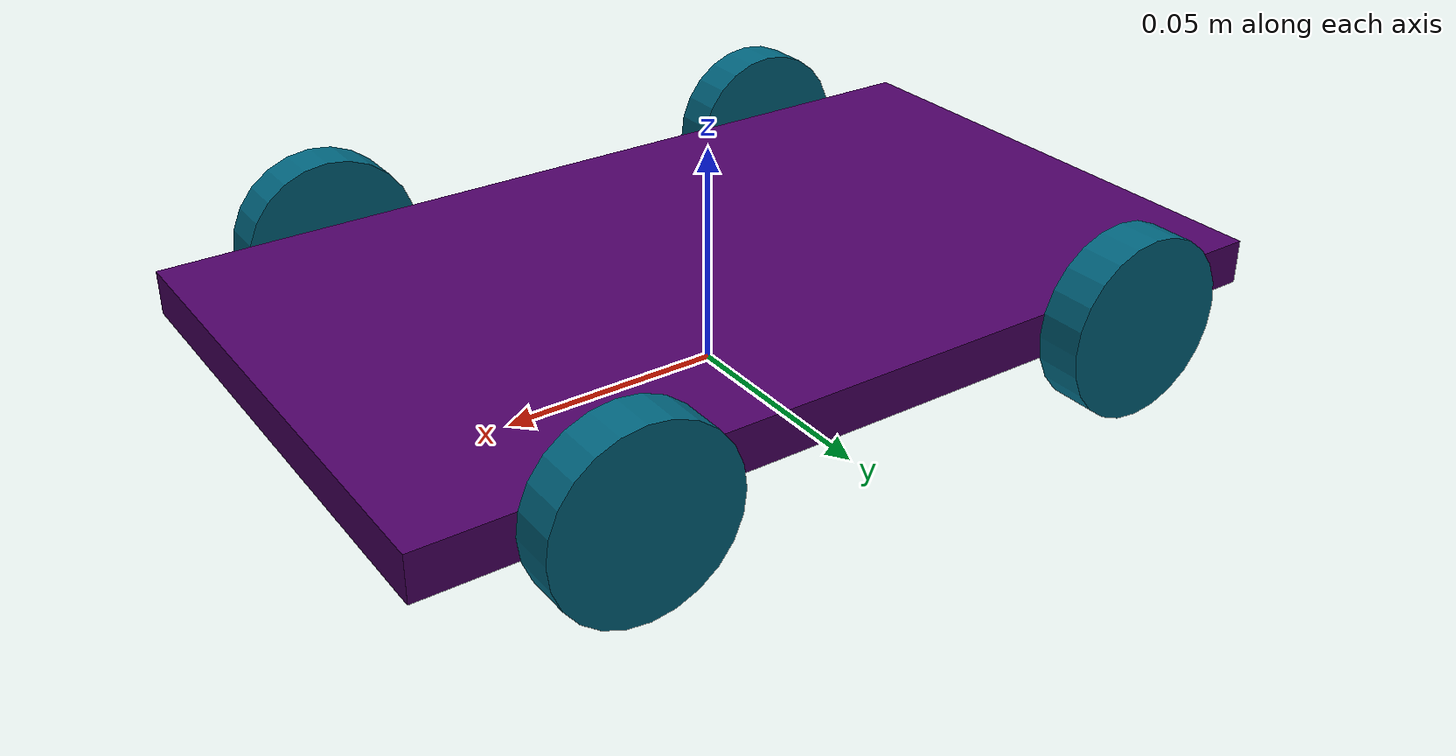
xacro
<?xml version='1.0'?>
<robot xmlns:xacro ="http://www.ros.org/wiki/xacro" name="car-robot" >
	<xacro:include filename="$(find car_robot)/urdf/car-robot-params.xacro" />
	<xacro:include filename="$(find car_robot)/urdf/car-robot-inertia.xacro" />
	<xacro:include filename="$(find car_robot)/urdf/car-robot-chassis.xacro" />
	<xacro:include filename="$(find car_robot)/urdf/car-robot-wheel.xacro" />
	<xacro:include filename="$(find car_robot)/urdf/car-robot-gazebo.xacro" />

</robot>

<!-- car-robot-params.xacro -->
<robot xmlns:xacro ="http://www.ros.org/wiki/xacro" >
	<xacro:property name="chassis_length" value="0.2" />
	<xacro:property name="chassis_width" value="0.12" />
	<xacro:property name="chassis_height" value="0.01" />
	<xacro:property name="chassis_mass" value="0.4" />
	<xacro:property name="wheel_radius" value="0.02" />
	<xacro:property name="wheel_height" value="0.01" />
	<xacro:property name="wheel_mass" value="0.2" />
</robot>

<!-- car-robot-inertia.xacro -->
<robot xmlns:xacro ="http://www.ros.org/wiki/xacro" name="car_robot_inertia">

	<xacro:macro name="box_inertia" params="mass L W H">
		<inertia ixx="${1/12 * mass * (L**2 + W**2 )}" iyy="${1/12 * mass * (H**2 + W**2 )}" izz="${1/12 * mass * (L**2 + H**2 )}"
		ixy="0" ixz="0" iyz="0"/>
	</xacro:macro>

	<xacro:macro name="cylinder_inertia" params="mass R H">
		<inertia ixx="${1/12 * mass * (3 * R**2 + H**2 )}" iyy="${1/12 * mass * (3 * R**2 + H**2 )}" izz="${0.5 * (mass * R**2 )}"
		ixy="0" ixz="0" iyz="0"/>
	</xacro:macro>

</robot>

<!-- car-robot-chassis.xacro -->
<robot xmlns:xacro ="http://www.ros.org/wiki/xacro" name="car_robot_chassis">

	<!--dummy link-->
	<link name="base_link"/>

	<!--chassis link-->
	<link name="chassis-link">
		<visual>
			<origin xyz="0 0 0" rpy="0 0 0" />
			<geometry>
				<box size="${chassis_length} ${chassis_width} ${chassis_height}" />
			</geometry>
			<material name="brown">
				<color rgba="0.3 0 0.4 1"/>
			</material>
		</visual>
		<collision>
			<origin xyz="0 0 0" rpy="0 0 0" />
			<geometry>
				<box size="${chassis_length} ${chassis_width} ${chassis_height}" />
			</geometry>
		</collision>
		<inertial>
			<mass value="0.4" />
			<inertia ixx="0.00048333" iyy="0.0013367" izz="0.0018133"
			ixy="0" ixz="0" iyz="0"/>
		</inertial>
	</link>

	<joint name="joint-base-chassis" type="fixed">
		<parent link="base_link"/>
		<child link="chassis-link"/>
		<origin xyz="0 0 ${wheel_radius}" rpy="0 0 0" />
	</joint>
</robot>

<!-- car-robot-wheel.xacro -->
<robot xmlns:xacro ="http://www.ros.org/wiki/xacro" name="car_robot_wheel">

	<material name="blue">
		<color rgba="0 0.4 0.5 1"/>
	</material>

	<xacro:macro name="wheel" params="x_position y_position x_reflect y_reflect">
	<!-- ${x_position}-${y_position}-wheel-link -->
		<link name="${x_position}-${y_position}-wheel-link">
			<visual>
				<origin xyz="0 0 0" rpy="${pi * 0.5} 0 0" />
				<geometry>
					<cylinder radius ="${wheel_radius}"  length="${wheel_height}" />
				</geometry>
				<material name="blue" />
			</visual>
			<collision>
				<origin xyz="0 0 0" rpy="${pi * 0.5} 0 0" />
				<geometry>
					<cylinder radius ="${wheel_radius}"  length="${wheel_height}" />
				</geometry>
			</collision>
			<inertial>
				<origin xyz="0 0 0" rpy="${pi * 0.5} 0 0" />
				<mass value="${wheel_mass}" />
				<xacro:cylinder_inertia  mass="${wheel_mass}" R="${wheel_radius}" H="${wheel_height}" />
			</inertial>
		</link>
		<joint name="joint-chassis-${x_position}-${y_position}-wheel" type="continuous">
			<parent link="chassis-link"/>
			<child link="${x_position}-${y_position}-wheel-link"/>
			<origin xyz="${x_reflect*0.3*chassis_length} ${y_reflect*(chassis_width/2+wheel_height/2)} 0" rpy="0 0 0" />
			<axis xyz="0 1 0" />
		</joint>
	</xacro:macro>

	<xacro:wheel x_position="front" y_position="right" x_reflect="1" y_reflect="1" />
	<xacro:wheel x_position="front" y_position="left" x_reflect="1" y_reflect="-1" />
	<xacro:wheel x_position="rare" y_position="right" x_reflect="-1" y_reflect="1" />
	<xacro:wheel x_position="rare" y_position="left" x_reflect="-1" y_reflect="-1" />
</robot>
